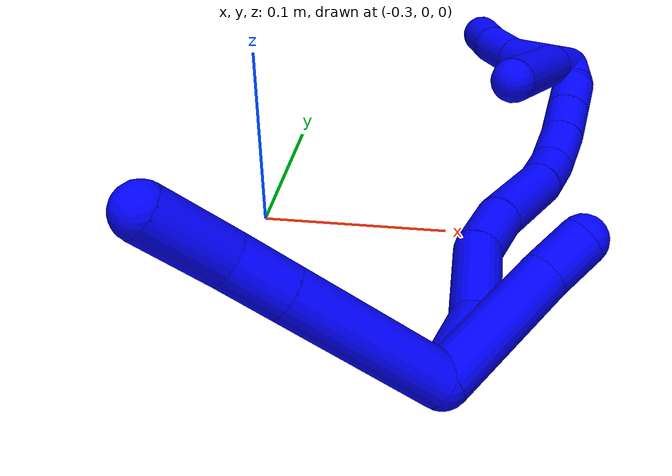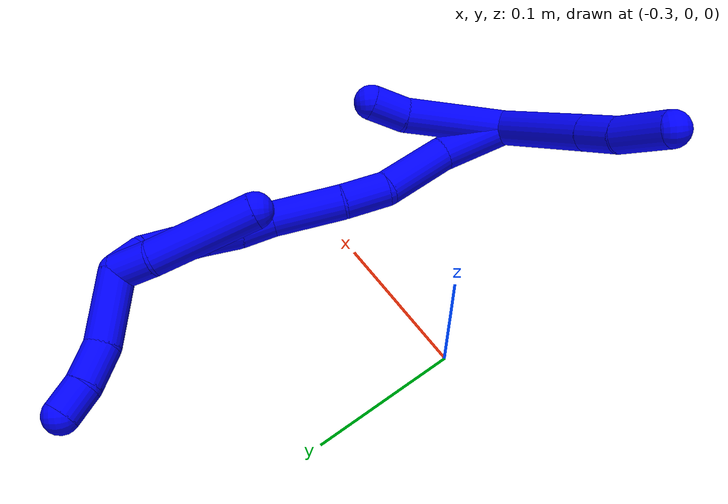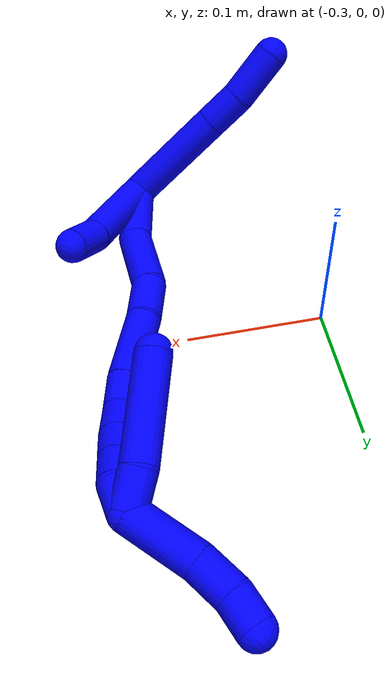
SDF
<sdf version="1.7">
 <world name="default">
  <model name="1">
   <static>0</static>
   <link name="1">
    <collision name="collision-cylinder-e_1_2_8">
     <pose>0.026741 0.017503 0.025152 -0.607958 0.71752 -0.234192</pose>
     <geometry><cylinder><radius>0.0125</radius><length>0.08134</length></cylinder></geometry>
     <surface>
      <friction><ode><mu>1.16</mu><mu2>1.16</mu2><slip1>0</slip1><slip2>0</slip2></ode></friction>
      <contact><ode><kp>1e+06</kp><kd>1</kd><max_vel>0</max_vel><min_depth>0.001</min_depth></ode></contact>
     </surface>
    </collision>
    <visual name="visual-cylinder-e_1_2_8">
     <pose>0.026741 0.017503 0.025152 -0.607958 0.71752 -0.234192</pose>
     <geometry><cylinder><radius>0.0125</radius><length>0.08134</length></cylinder></geometry>
     <material><ambient>0 0 1 1</ambient></material>
    </visual>
    <collision name="collision-cylinder-e_2_8_9">
     <pose>0.062789 0.041151 0.059022 -0.613988 0.717361 -0.236587</pose>
     <geometry><cylinder><radius>0.0125</radius><length>0.028312</length></cylinder></geometry>
     <surface>
      <friction><ode><mu>1.16</mu><mu2>1.16</mu2><slip1>0</slip1><slip2>0</slip2></ode></friction>
      <contact><ode><kp>1e+06</kp><kd>1</kd><max_vel>0</max_vel><min_depth>0.001</min_depth></ode></contact>
     </surface>
    </collision>
    <visual name="visual-cylinder-e_2_8_9">
     <pose>0.062789 0.041151 0.059022 -0.613988 0.717361 -0.236587</pose>
     <geometry><cylinder><radius>0.0125</radius><length>0.028312</length></cylinder></geometry>
     <material><ambient>0 0 1 1</ambient></material>
    </visual>
    <collision name="collision-cylinder-e_3_9_6">
     <pose>0.085612 0.053052 0.081566 -0.394484 0.734277 -0.153405</pose>
     <geometry><cylinder><radius>0.0125</radius><length>0.040348</length></cylinder></geometry>
     <surface>
      <friction><ode><mu>1.16</mu><mu2>1.16</mu2><slip1>0</slip1><slip2>0</slip2></ode></friction>
      <contact><ode><kp>1e+06</kp><kd>1</kd><max_vel>0</max_vel><min_depth>0.001</min_depth></ode></contact>
     </surface>
    </collision>
    <visual name="visual-cylinder-e_3_9_6">
     <pose>0.085612 0.053052 0.081566 -0.394484 0.734277 -0.153405</pose>
     <geometry><cylinder><radius>0.0125</radius><length>0.040348</length></cylinder></geometry>
     <material><ambient>0 0 1 1</ambient></material>
    </visual>
    <collision name="collision-cylinder-e_1_2_10">
     <pose>0.011971 -0.002866 -0.034893 3.05963 0.329464 2.65793</pose>
     <geometry><cylinder><radius>0.0125</radius><length>0.074002</length></cylinder></geometry>
     <surface>
      <friction><ode><mu>1.16</mu><mu2>1.16</mu2><slip1>0</slip1><slip2>0</slip2></ode></friction>
      <contact><ode><kp>1e+06</kp><kd>1</kd><max_vel>0</max_vel><min_depth>0.001</min_depth></ode></contact>
     </surface>
    </collision>
    <visual name="visual-cylinder-e_1_2_10">
     <pose>0.011971 -0.002866 -0.034893 3.05963 0.329464 2.65793</pose>
     <geometry><cylinder><radius>0.0125</radius><length>0.074002</length></cylinder></geometry>
     <material><ambient>0 0 1 1</ambient></material>
    </visual>
    <collision name="collision-cylinder-e_2_10_5">
     <pose>0.029551 -0.009164 -0.081 2.84465 0.44616 1.97579</pose>
     <geometry><cylinder><radius>0.0125</radius><length>0.025998</length></cylinder></geometry>
     <surface>
      <friction><ode><mu>1.16</mu><mu2>1.16</mu2><slip1>0</slip1><slip2>0</slip2></ode></friction>
      <contact><ode><kp>1e+06</kp><kd>1</kd><max_vel>0</max_vel><min_depth>0.001</min_depth></ode></contact>
     </surface>
    </collision>
    <visual name="visual-cylinder-e_2_10_5">
     <pose>0.029551 -0.009164 -0.081 2.84465 0.44616 1.97579</pose>
     <geometry><cylinder><radius>0.0125</radius><length>0.025998</length></cylinder></geometry>
     <material><ambient>0 0 1 1</ambient></material>
    </visual>
    <collision name="collision-cylinder-e_1_2_11">
     <pose>0.002065 0.009088 -0.023017 -2.76552 0.083266 -0.431043</pose>
     <geometry><cylinder><radius>0.0125</radius><length>0.049664</length></cylinder></geometry>
     <surface>
      <friction><ode><mu>1.16</mu><mu2>1.16</mu2><slip1>0</slip1><slip2>0</slip2></ode></friction>
      <contact><ode><kp>1e+06</kp><kd>1</kd><max_vel>0</max_vel><min_depth>0.001</min_depth></ode></contact>
     </surface>
    </collision>
    <visual name="visual-cylinder-e_1_2_11">
     <pose>0.002065 0.009088 -0.023017 -2.76552 0.083266 -0.431043</pose>
     <geometry><cylinder><radius>0.0125</radius><length>0.049664</length></cylinder></geometry>
     <material><ambient>0 0 1 1</ambient></material>
    </visual>
    <collision name="collision-cylinder-e_2_11_12">
     <pose>0.01145 0.032705 -0.066698 -2.52882 0.282022 -0.843582</pose>
     <geometry><cylinder><radius>0.0125</radius><length>0.052599</length></cylinder></geometry>
     <surface>
      <friction><ode><mu>1.16</mu><mu2>1.16</mu2><slip1>0</slip1><slip2>0</slip2></ode></friction>
      <contact><ode><kp>1e+06</kp><kd>1</kd><max_vel>0</max_vel><min_depth>0.001</min_depth></ode></contact>
     </surface>
    </collision>
    <visual name="visual-cylinder-e_2_11_12">
     <pose>0.01145 0.032705 -0.066698 -2.52882 0.282022 -0.843582</pose>
     <geometry><cylinder><radius>0.0125</radius><length>0.052599</length></cylinder></geometry>
     <material><ambient>0 0 1 1</ambient></material>
    </visual>
    <collision name="collision-cylinder-e_3_12_13">
     <pose>0.021475 0.051709 -0.10238 -2.85195 0.171019 -1.06273</pose>
     <geometry><cylinder><radius>0.0125</radius><length>0.031806</length></cylinder></geometry>
     <surface>
      <friction><ode><mu>1.16</mu><mu2>1.16</mu2><slip1>0</slip1><slip2>0</slip2></ode></friction>
      <contact><ode><kp>1e+06</kp><kd>1</kd><max_vel>0</max_vel><min_depth>0.001</min_depth></ode></contact>
     </surface>
    </collision>
    <visual name="visual-cylinder-e_3_12_13">
     <pose>0.021475 0.051709 -0.10238 -2.85195 0.171019 -1.06273</pose>
     <geometry><cylinder><radius>0.0125</radius><length>0.031806</length></cylinder></geometry>
     <material><ambient>0 0 1 1</ambient></material>
    </visual>
    <collision name="collision-cylinder-e_4_13_14">
     <pose>0.025243 0.06063 -0.142338 -2.9652 0.041884 -0.465151</pose>
     <geometry><cylinder><radius>0.0125</radius><length>0.050709</length></cylinder></geometry>
     <surface>
      <friction><ode><mu>1.16</mu><mu2>1.16</mu2><slip1>0</slip1><slip2>0</slip2></ode></friction>
      <contact><ode><kp>1e+06</kp><kd>1</kd><max_vel>0</max_vel><min_depth>0.001</min_depth></ode></contact>
     </surface>
    </collision>
    <visual name="visual-cylinder-e_4_13_14">
     <pose>0.025243 0.06063 -0.142338 -2.9652 0.041884 -0.465151</pose>
     <geometry><cylinder><radius>0.0125</radius><length>0.050709</length></cylinder></geometry>
     <material><ambient>0 0 1 1</ambient></material>
    </visual>
    <collision name="collision-cylinder-e_5_14_15">
     <pose>0.027813 0.068945 -0.178894 -2.82008 0.122595 -0.723662</pose>
     <geometry><cylinder><radius>0.0125</radius><length>0.024673</length></cylinder></geometry>
     <surface>
      <friction><ode><mu>1.16</mu><mu2>1.16</mu2><slip1>0</slip1><slip2>0</slip2></ode></friction>
      <contact><ode><kp>1e+06</kp><kd>1</kd><max_vel>0</max_vel><min_depth>0.001</min_depth></ode></contact>
     </surface>
    </collision>
    <visual name="visual-cylinder-e_5_14_15">
     <pose>0.027813 0.068945 -0.178894 -2.82008 0.122595 -0.723662</pose>
     <geometry><cylinder><radius>0.0125</radius><length>0.024673</length></cylinder></geometry>
     <material><ambient>0 0 1 1</ambient></material>
    </visual>
    <collision name="collision-cylinder-e_6_15_16">
     <pose>0.034573 0.076251 -0.201422 -2.83637 0.430297 -1.91501</pose>
     <geometry><cylinder><radius>0.0125</radius><length>0.025175</length></cylinder></geometry>
     <surface>
      <friction><ode><mu>1.16</mu><mu2>1.16</mu2><slip1>0</slip1><slip2>0</slip2></ode></friction>
      <contact><ode><kp>1e+06</kp><kd>1</kd><max_vel>0</max_vel><min_depth>0.001</min_depth></ode></contact>
     </surface>
    </collision>
    <visual name="visual-cylinder-e_6_15_16">
     <pose>0.034573 0.076251 -0.201422 -2.83637 0.430297 -1.91501</pose>
     <geometry><cylinder><radius>0.0125</radius><length>0.025175</length></cylinder></geometry>
     <material><ambient>0 0 1 1</ambient></material>
    </visual>
    <collision name="collision-cylinder-e_7_16_17">
     <pose>0.045055 0.083428 -0.221406 -2.75072 0.48974 -1.80163</pose>
     <geometry><cylinder><radius>0.0125</radius><length>0.022242</length></cylinder></geometry>
     <surface>
      <friction><ode><mu>1.16</mu><mu2>1.16</mu2><slip1>0</slip1><slip2>0</slip2></ode></friction>
      <contact><ode><kp>1e+06</kp><kd>1</kd><max_vel>0</max_vel><min_depth>0.001</min_depth></ode></contact>
     </surface>
    </collision>
    <visual name="visual-cylinder-e_7_16_17">
     <pose>0.045055 0.083428 -0.221406 -2.75072 0.48974 -1.80163</pose>
     <geometry><cylinder><radius>0.0125</radius><length>0.022242</length></cylinder></geometry>
     <material><ambient>0 0 1 1</ambient></material>
    </visual>
    <collision name="collision-cylinder-e_8_17_18">
     <pose>0.055236 0.09086 -0.239303 -2.74518 0.477526 -1.76184</pose>
     <geometry><cylinder><radius>0.0125</radius><length>0.02154</length></cylinder></geometry>
     <surface>
      <friction><ode><mu>1.16</mu><mu2>1.16</mu2><slip1>0</slip1><slip2>0</slip2></ode></friction>
      <contact><ode><kp>1e+06</kp><kd>1</kd><max_vel>0</max_vel><min_depth>0.001</min_depth></ode></contact>
     </surface>
    </collision>
    <visual name="visual-cylinder-e_8_17_18">
     <pose>0.055236 0.09086 -0.239303 -2.74518 0.477526 -1.76184</pose>
     <geometry><cylinder><radius>0.0125</radius><length>0.02154</length></cylinder></geometry>
     <material><ambient>0 0 1 1</ambient></material>
    </visual>
    <collision name="collision-cylinder-e_9_18_1">
     <pose>0.063587 0.101336 -0.255807 -2.4182 0.320542 -0.807607</pose>
     <geometry><cylinder><radius>0.0125</radius><length>0.021592</length></cylinder></geometry>
     <surface>
      <friction><ode><mu>1.16</mu><mu2>1.16</mu2><slip1>0</slip1><slip2>0</slip2></ode></friction>
      <contact><ode><kp>1e+06</kp><kd>1</kd><max_vel>0</max_vel><min_depth>0.001</min_depth></ode></contact>
     </surface>
    </collision>
    <visual name="visual-cylinder-e_9_18_1">
     <pose>0.063587 0.101336 -0.255807 -2.4182 0.320542 -0.807607</pose>
     <geometry><cylinder><radius>0.0125</radius><length>0.021592</length></cylinder></geometry>
     <material><ambient>0 0 1 1</ambient></material>
    </visual>
    <collision name="collision-cylinder-e_1_1_19">
     <pose>0.067179 0.13266 -0.267833 -1.74605 0.00765 -0.009124</pose>
     <geometry><cylinder><radius>0.0125</radius><length>0.04985</length></cylinder></geometry>
     <surface>
      <friction><ode><mu>1.16</mu><mu2>1.16</mu2><slip1>0</slip1><slip2>0</slip2></ode></friction>
      <contact><ode><kp>1e+06</kp><kd>1</kd><max_vel>0</max_vel><min_depth>0.001</min_depth></ode></contact>
     </surface>
    </collision>
    <visual name="visual-cylinder-e_1_1_19">
     <pose>0.067179 0.13266 -0.267833 -1.74605 0.00765 -0.009124</pose>
     <geometry><cylinder><radius>0.0125</radius><length>0.04985</length></cylinder></geometry>
     <material><ambient>0 0 1 1</ambient></material>
    </visual>
    <collision name="collision-cylinder-e_2_19_20">
     <pose>0.0696 0.169867 -0.277248 -1.95151 0.162046 -0.238784</pose>
     <geometry><cylinder><radius>0.0125</radius><length>0.027644</length></cylinder></geometry>
     <surface>
      <friction><ode><mu>1.16</mu><mu2>1.16</mu2><slip1>0</slip1><slip2>0</slip2></ode></friction>
      <contact><ode><kp>1e+06</kp><kd>1</kd><max_vel>0</max_vel><min_depth>0.001</min_depth></ode></contact>
     </surface>
    </collision>
    <visual name="visual-cylinder-e_2_19_20">
     <pose>0.0696 0.169867 -0.277248 -1.95151 0.162046 -0.238784</pose>
     <geometry><cylinder><radius>0.0125</radius><length>0.027644</length></cylinder></geometry>
     <material><ambient>0 0 1 1</ambient></material>
    </visual>
    <collision name="collision-cylinder-e_3_20_4">
     <pose>0.073232 0.191706 -0.288679 -2.17713 0.124862 -0.237722</pose>
     <geometry><cylinder><radius>0.0125</radius><length>0.022506</length></cylinder></geometry>
     <surface>
      <friction><ode><mu>1.16</mu><mu2>1.16</mu2><slip1>0</slip1><slip2>0</slip2></ode></friction>
      <contact><ode><kp>1e+06</kp><kd>1</kd><max_vel>0</max_vel><min_depth>0.001</min_depth></ode></contact>
     </surface>
    </collision>
    <visual name="visual-cylinder-e_3_20_4">
     <pose>0.073232 0.191706 -0.288679 -2.17713 0.124862 -0.237722</pose>
     <geometry><cylinder><radius>0.0125</radius><length>0.022506</length></cylinder></geometry>
     <material><ambient>0 0 1 1</ambient></material>
    </visual>
    <collision name="collision-cylinder-e_1_1_21">
     <pose>0.070868 0.105785 -0.250779 0.181542 0.291644 0.026734</pose>
     <geometry><cylinder><radius>0.0125</radius><length>0.026981</length></cylinder></geometry>
     <surface>
      <friction><ode><mu>1.16</mu><mu2>1.16</mu2><slip1>0</slip1><slip2>0</slip2></ode></friction>
      <contact><ode><kp>1e+06</kp><kd>1</kd><max_vel>0</max_vel><min_depth>0.001</min_depth></ode></contact>
     </surface>
    </collision>
    <visual name="visual-cylinder-e_1_1_21">
     <pose>0.070868 0.105785 -0.250779 0.181542 0.291644 0.026734</pose>
     <geometry><cylinder><radius>0.0125</radius><length>0.026981</length></cylinder></geometry>
     <material><ambient>0 0 1 1</ambient></material>
    </visual>
    <collision name="collision-cylinder-e_2_21_3">
     <pose>0.079261 0.092227 -0.203624 0.315026 0.12396 0.019713</pose>
     <geometry><cylinder><radius>0.0125</radius><length>0.073019</length></cylinder></geometry>
     <surface>
      <friction><ode><mu>1.16</mu><mu2>1.16</mu2><slip1>0</slip1><slip2>0</slip2></ode></friction>
      <contact><ode><kp>1e+06</kp><kd>1</kd><max_vel>0</max_vel><min_depth>0.001</min_depth></ode></contact>
     </surface>
    </collision>
    <visual name="visual-cylinder-e_2_21_3">
     <pose>0.079261 0.092227 -0.203624 0.315026 0.12396 0.019713</pose>
     <geometry><cylinder><radius>0.0125</radius><length>0.073019</length></cylinder></geometry>
     <material><ambient>0 0 1 1</ambient></material>
    </visual>
    <collision name="collision-sphere-3">
     <pose>0.083775 0.081002 -0.169177 0 -0 0</pose>
     <geometry><sphere><radius>0.0125</radius></sphere></geometry>
     <surface>
      <friction><ode><mu>1.16</mu><mu2>1.16</mu2><slip1>0</slip1><slip2>0</slip2></ode></friction>
      <contact><ode><kp>1e+06</kp><kd>1</kd><max_vel>0</max_vel><min_depth>0.001</min_depth></ode></contact>
     </surface>
    </collision>
    <visual name="visual-sphere-3">
     <pose>0.083775 0.081002 -0.169177 0 -0 0</pose>
     <geometry><sphere><radius>0.0125</radius></sphere></geometry>
     <material><ambient>0 0 1 1</ambient></material>
    </visual>
    <collision name="collision-sphere-21">
     <pose>0.074747 0.103452 -0.23807 0 -0 0</pose>
     <geometry><sphere><radius>0.0125</radius></sphere></geometry>
     <surface>
      <friction><ode><mu>1.16</mu><mu2>1.16</mu2><slip1>0</slip1><slip2>0</slip2></ode></friction>
      <contact><ode><kp>1e+06</kp><kd>1</kd><max_vel>0</max_vel><min_depth>0.001</min_depth></ode></contact>
     </surface>
    </collision>
    <visual name="visual-sphere-21">
     <pose>0.074747 0.103452 -0.23807 0 -0 0</pose>
     <geometry><sphere><radius>0.0125</radius></sphere></geometry>
     <material><ambient>0 0 1 1</ambient></material>
    </visual>
    <collision name="collision-sphere-4">
     <pose>0.074633 0.200882 -0.295042 0 -0 0</pose>
     <geometry><sphere><radius>0.0125</radius></sphere></geometry>
     <surface>
      <friction><ode><mu>1.16</mu><mu2>1.16</mu2><slip1>0</slip1><slip2>0</slip2></ode></friction>
      <contact><ode><kp>1e+06</kp><kd>1</kd><max_vel>0</max_vel><min_depth>0.001</min_depth></ode></contact>
     </surface>
    </collision>
    <visual name="visual-sphere-4">
     <pose>0.074633 0.200882 -0.295042 0 -0 0</pose>
     <geometry><sphere><radius>0.0125</radius></sphere></geometry>
     <material><ambient>0 0 1 1</ambient></material>
    </visual>
    <collision name="collision-sphere-20">
     <pose>0.07183 0.182531 -0.282316 0 -0 0</pose>
     <geometry><sphere><radius>0.0125</radius></sphere></geometry>
     <surface>
      <friction><ode><mu>1.16</mu><mu2>1.16</mu2><slip1>0</slip1><slip2>0</slip2></ode></friction>
      <contact><ode><kp>1e+06</kp><kd>1</kd><max_vel>0</max_vel><min_depth>0.001</min_depth></ode></contact>
     </surface>
    </collision>
    <visual name="visual-sphere-20">
     <pose>0.07183 0.182531 -0.282316 0 -0 0</pose>
     <geometry><sphere><radius>0.0125</radius></sphere></geometry>
     <material><ambient>0 0 1 1</ambient></material>
    </visual>
    <collision name="collision-sphere-5">
     <pose>0.035161 -0.012595 -0.092213 0 -0 0</pose>
     <geometry><sphere><radius>0.0125</radius></sphere></geometry>
     <surface>
      <friction><ode><mu>1.16</mu><mu2>1.16</mu2><slip1>0</slip1><slip2>0</slip2></ode></friction>
      <contact><ode><kp>1e+06</kp><kd>1</kd><max_vel>0</max_vel><min_depth>0.001</min_depth></ode></contact>
     </surface>
    </collision>
    <visual name="visual-sphere-5">
     <pose>0.035161 -0.012595 -0.092213 0 -0 0</pose>
     <geometry><sphere><radius>0.0125</radius></sphere></geometry>
     <material><ambient>0 0 1 1</ambient></material>
    </visual>
    <collision name="collision-sphere-10">
     <pose>0.023942 -0.005733 -0.069786 0 -0 0</pose>
     <geometry><sphere><radius>0.0125</radius></sphere></geometry>
     <surface>
      <friction><ode><mu>1.16</mu><mu2>1.16</mu2><slip1>0</slip1><slip2>0</slip2></ode></friction>
      <contact><ode><kp>1e+06</kp><kd>1</kd><max_vel>0</max_vel><min_depth>0.001</min_depth></ode></contact>
     </surface>
    </collision>
    <visual name="visual-sphere-10">
     <pose>0.023942 -0.005733 -0.069786 0 -0 0</pose>
     <geometry><sphere><radius>0.0125</radius></sphere></geometry>
     <material><ambient>0 0 1 1</ambient></material>
    </visual>
    <collision name="collision-sphere-6">
     <pose>0.09913 0.058808 0.095392 0 -0 0</pose>
     <geometry><sphere><radius>0.0125</radius></sphere></geometry>
     <surface>
      <friction><ode><mu>1.16</mu><mu2>1.16</mu2><slip1>0</slip1><slip2>0</slip2></ode></friction>
      <contact><ode><kp>1e+06</kp><kd>1</kd><max_vel>0</max_vel><min_depth>0.001</min_depth></ode></contact>
     </surface>
    </collision>
    <visual name="visual-sphere-6">
     <pose>0.09913 0.058808 0.095392 0 -0 0</pose>
     <geometry><sphere><radius>0.0125</radius></sphere></geometry>
     <material><ambient>0 0 1 1</ambient></material>
    </visual>
    <collision name="collision-sphere-9">
     <pose>0.072095 0.047297 0.067741 0 -0 0</pose>
     <geometry><sphere><radius>0.0125</radius></sphere></geometry>
     <surface>
      <friction><ode><mu>1.16</mu><mu2>1.16</mu2><slip1>0</slip1><slip2>0</slip2></ode></friction>
      <contact><ode><kp>1e+06</kp><kd>1</kd><max_vel>0</max_vel><min_depth>0.001</min_depth></ode></contact>
     </surface>
    </collision>
    <visual name="visual-sphere-9">
     <pose>0.072095 0.047297 0.067741 0 -0 0</pose>
     <geometry><sphere><radius>0.0125</radius></sphere></geometry>
     <material><ambient>0 0 1 1</ambient></material>
    </visual>
    <collision name="collision-sphere-2">
     <geometry><sphere><radius>0.0125</radius></sphere></geometry>
     <surface>
      <friction><ode><mu>1.16</mu><mu2>1.16</mu2><slip1>0</slip1><slip2>0</slip2></ode></friction>
      <contact><ode><kp>1e+06</kp><kd>1</kd><max_vel>0</max_vel><min_depth>0.001</min_depth></ode></contact>
     </surface>
    </collision>
    <visual name="visual-sphere-2">
     <geometry><sphere><radius>0.0125</radius></sphere></geometry>
     <material><ambient>0 0 1 1</ambient></material>
    </visual>
    <collision name="collision-sphere-19">
     <pose>0.06737 0.157203 -0.272179 0 -0 0</pose>
     <geometry><sphere><radius>0.0125</radius></sphere></geometry>
     <surface>
      <friction><ode><mu>1.16</mu><mu2>1.16</mu2><slip1>0</slip1><slip2>0</slip2></ode></friction>
      <contact><ode><kp>1e+06</kp><kd>1</kd><max_vel>0</max_vel><min_depth>0.001</min_depth></ode></contact>
     </surface>
    </collision>
    <visual name="visual-sphere-19">
     <pose>0.06737 0.157203 -0.272179 0 -0 0</pose>
     <geometry><sphere><radius>0.0125</radius></sphere></geometry>
     <material><ambient>0 0 1 1</ambient></material>
    </visual>
    <collision name="collision-sphere-8">
     <pose>0.053483 0.035006 0.050304 0 -0 0</pose>
     <geometry><sphere><radius>0.0125</radius></sphere></geometry>
     <surface>
      <friction><ode><mu>1.16</mu><mu2>1.16</mu2><slip1>0</slip1><slip2>0</slip2></ode></friction>
      <contact><ode><kp>1e+06</kp><kd>1</kd><max_vel>0</max_vel><min_depth>0.001</min_depth></ode></contact>
     </surface>
    </collision>
    <visual name="visual-sphere-8">
     <pose>0.053483 0.035006 0.050304 0 -0 0</pose>
     <geometry><sphere><radius>0.0125</radius></sphere></geometry>
     <material><ambient>0 0 1 1</ambient></material>
    </visual>
    <collision name="collision-sphere-11">
     <pose>0.004131 0.018177 -0.046033 0 -0 0</pose>
     <geometry><sphere><radius>0.0125</radius></sphere></geometry>
     <surface>
      <friction><ode><mu>1.16</mu><mu2>1.16</mu2><slip1>0</slip1><slip2>0</slip2></ode></friction>
      <contact><ode><kp>1e+06</kp><kd>1</kd><max_vel>0</max_vel><min_depth>0.001</min_depth></ode></contact>
     </surface>
    </collision>
    <visual name="visual-sphere-11">
     <pose>0.004131 0.018177 -0.046033 0 -0 0</pose>
     <geometry><sphere><radius>0.0125</radius></sphere></geometry>
     <material><ambient>0 0 1 1</ambient></material>
    </visual>
    <collision name="collision-sphere-12">
     <pose>0.018769 0.047233 -0.087362 0 -0 0</pose>
     <geometry><sphere><radius>0.0125</radius></sphere></geometry>
     <surface>
      <friction><ode><mu>1.16</mu><mu2>1.16</mu2><slip1>0</slip1><slip2>0</slip2></ode></friction>
      <contact><ode><kp>1e+06</kp><kd>1</kd><max_vel>0</max_vel><min_depth>0.001</min_depth></ode></contact>
     </surface>
    </collision>
    <visual name="visual-sphere-12">
     <pose>0.018769 0.047233 -0.087362 0 -0 0</pose>
     <geometry><sphere><radius>0.0125</radius></sphere></geometry>
     <material><ambient>0 0 1 1</ambient></material>
    </visual>
    <collision name="collision-sphere-13">
     <pose>0.024182 0.056185 -0.117399 0 -0 0</pose>
     <geometry><sphere><radius>0.0125</radius></sphere></geometry>
     <surface>
      <friction><ode><mu>1.16</mu><mu2>1.16</mu2><slip1>0</slip1><slip2>0</slip2></ode></friction>
      <contact><ode><kp>1e+06</kp><kd>1</kd><max_vel>0</max_vel><min_depth>0.001</min_depth></ode></contact>
     </surface>
    </collision>
    <visual name="visual-sphere-13">
     <pose>0.024182 0.056185 -0.117399 0 -0 0</pose>
     <geometry><sphere><radius>0.0125</radius></sphere></geometry>
     <material><ambient>0 0 1 1</ambient></material>
    </visual>
    <collision name="collision-sphere-14">
     <pose>0.026305 0.065076 -0.167278 0 -0 0</pose>
     <geometry><sphere><radius>0.0125</radius></sphere></geometry>
     <surface>
      <friction><ode><mu>1.16</mu><mu2>1.16</mu2><slip1>0</slip1><slip2>0</slip2></ode></friction>
      <contact><ode><kp>1e+06</kp><kd>1</kd><max_vel>0</max_vel><min_depth>0.001</min_depth></ode></contact>
     </surface>
    </collision>
    <visual name="visual-sphere-14">
     <pose>0.026305 0.065076 -0.167278 0 -0 0</pose>
     <geometry><sphere><radius>0.0125</radius></sphere></geometry>
     <material><ambient>0 0 1 1</ambient></material>
    </visual>
    <collision name="collision-sphere-15">
     <pose>0.029322 0.072814 -0.19051 0 -0 0</pose>
     <geometry><sphere><radius>0.0125</radius></sphere></geometry>
     <surface>
      <friction><ode><mu>1.16</mu><mu2>1.16</mu2><slip1>0</slip1><slip2>0</slip2></ode></friction>
      <contact><ode><kp>1e+06</kp><kd>1</kd><max_vel>0</max_vel><min_depth>0.001</min_depth></ode></contact>
     </surface>
    </collision>
    <visual name="visual-sphere-15">
     <pose>0.029322 0.072814 -0.19051 0 -0 0</pose>
     <geometry><sphere><radius>0.0125</radius></sphere></geometry>
     <material><ambient>0 0 1 1</ambient></material>
    </visual>
    <collision name="collision-sphere-16">
     <pose>0.039823 0.079689 -0.212333 0 -0 0</pose>
     <geometry><sphere><radius>0.0125</radius></sphere></geometry>
     <surface>
      <friction><ode><mu>1.16</mu><mu2>1.16</mu2><slip1>0</slip1><slip2>0</slip2></ode></friction>
      <contact><ode><kp>1e+06</kp><kd>1</kd><max_vel>0</max_vel><min_depth>0.001</min_depth></ode></contact>
     </surface>
    </collision>
    <visual name="visual-sphere-16">
     <pose>0.039823 0.079689 -0.212333 0 -0 0</pose>
     <geometry><sphere><radius>0.0125</radius></sphere></geometry>
     <material><ambient>0 0 1 1</ambient></material>
    </visual>
    <collision name="collision-sphere-17">
     <pose>0.050286 0.087167 -0.23048 0 -0 0</pose>
     <geometry><sphere><radius>0.0125</radius></sphere></geometry>
     <surface>
      <friction><ode><mu>1.16</mu><mu2>1.16</mu2><slip1>0</slip1><slip2>0</slip2></ode></friction>
      <contact><ode><kp>1e+06</kp><kd>1</kd><max_vel>0</max_vel><min_depth>0.001</min_depth></ode></contact>
     </surface>
    </collision>
    <visual name="visual-sphere-17">
     <pose>0.050286 0.087167 -0.23048 0 -0 0</pose>
     <geometry><sphere><radius>0.0125</radius></sphere></geometry>
     <material><ambient>0 0 1 1</ambient></material>
    </visual>
    <collision name="collision-sphere-18">
     <pose>0.060186 0.094554 -0.248127 0 -0 0</pose>
     <geometry><sphere><radius>0.0125</radius></sphere></geometry>
     <surface>
      <friction><ode><mu>1.16</mu><mu2>1.16</mu2><slip1>0</slip1><slip2>0</slip2></ode></friction>
      <contact><ode><kp>1e+06</kp><kd>1</kd><max_vel>0</max_vel><min_depth>0.001</min_depth></ode></contact>
     </surface>
    </collision>
    <visual name="visual-sphere-18">
     <pose>0.060186 0.094554 -0.248127 0 -0 0</pose>
     <geometry><sphere><radius>0.0125</radius></sphere></geometry>
     <material><ambient>0 0 1 1</ambient></material>
    </visual>
    <collision name="collision-sphere-1">
     <pose>0.066989 0.108118 -0.263487 0 -0 0</pose>
     <geometry><sphere><radius>0.0125</radius></sphere></geometry>
     <surface>
      <friction><ode><mu>1.16</mu><mu2>1.16</mu2><slip1>0</slip1><slip2>0</slip2></ode></friction>
      <contact><ode><kp>1e+06</kp><kd>1</kd><max_vel>0</max_vel><min_depth>0.001</min_depth></ode></contact>
     </surface>
    </collision>
    <visual name="visual-sphere-1">
     <pose>0.066989 0.108118 -0.263487 0 -0 0</pose>
     <geometry><sphere><radius>0.0125</radius></sphere></geometry>
     <material><ambient>0 0 1 1</ambient></material>
    </visual>
    <inertial>
     <pose>0.041962 0.061338 -0.116053 0 -0 0</pose>
     <mass>0.75</mass>
     <inertia>
      <ixx>9.4e-05</ixx>
      <ixy>0</ixy>
      <ixz>0</ixz>
      <iyy>8.2e-05</iyy>
      <iyz>0</iyz>
      <izz>-0.000127</izz>
     </inertia>
    </inertial>
   </link>
   <pose>-0.187569 -0.143422 0.016347 -1.09366 -1.35562 2.07885</pose>
  </model>
 </world>
</sdf>
